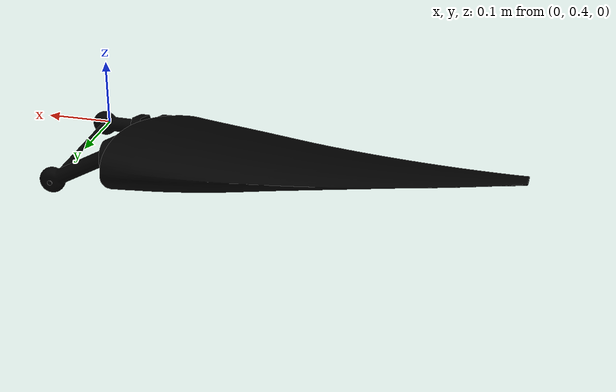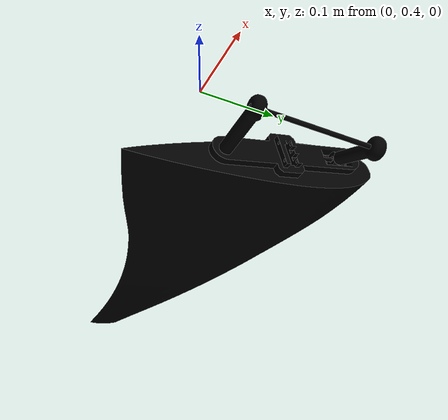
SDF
<sdf version='1.11'>
    <model name='4_link_mechanism'>
      <link name='base_link'>
        <inertial>
          <pose>-0.036030663321934601 0.59638474826819721 0.04700297266298855 0 0 0</pose>
          <mass>0.0080817471013597455</mass>
          <inertia>
            <ixx>3.0000000000000001e-05</ixx>
            <ixy>0</ixy>
            <ixz>0</ixz>
            <iyy>0</iyy>
            <iyz>0</iyz>
            <izz>3.0000000000000001e-05</izz>
          </inertia>
        </inertial>
        <collision name='base_link_collision'>
          <pose>0 0 0 0 0 0</pose>
          <geometry>
            <mesh>
              <scale>0.001 0.001 0.001</scale>
              <uri>file://$(find 4_link_mechanism_description)/meshes/base_link.stl</uri>
            </mesh>
          </geometry>
        </collision>
        <visual name='base_link_visual'>
          <pose>0 0 0 0 0 0</pose>
          <geometry>
            <mesh>
              <scale>0.001 0.001 0.001</scale>
              <uri>file://$(find 4_link_mechanism_description)/meshes/base_link.stl</uri>
            </mesh>
          </geometry>
          <material>
            <diffuse>0 0 0 1</diffuse>
            <ambient>0 0 0 1</ambient>
          </material>
        </visual>
      </link>
      <joint name='revolucion1' type='revolute'>
        <pose relative_to='base_link'>-0.036031000000000001 0.70138500000000004 0.047095999999999999 0 0 0</pose>
        <parent>base_link</parent>
        <child>input_bar_1_1</child>
        <axis>
          <xyz>-5.0000000000000004e-06 1 0.00088400000000000002</xyz>
          <limit>
            <lower>-inf</lower>
            <upper>inf</upper>
          </limit>
          <dynamics>
            <spring_reference>0</spring_reference>
            <spring_stiffness>0</spring_stiffness>
          </dynamics>
        </axis>
      </joint>
      <link name='input_bar_1_1'>
        <pose relative_to='revolucion1'>0 0 0 0 0 0</pose>
        <inertial>
          <pose>-0.027484096297025949 -0.01101397279025618 0.015329729548726819 0 0 0</pose>
          <mass>0.040656388446325881</mass>
          <inertia>
            <ixx>1.2e-05</ixx>
            <ixy>0</ixy>
            <ixz>1.5999999999999999e-05</ixz>
            <iyy>4.1e-05</iyy>
            <iyz>0</iyz>
            <izz>3.1000000000000001e-05</izz>
          </inertia>
        </inertial>
        <collision name='input_bar_1_1_collision'>
          <pose>0.036031000000000001 -0.70138500000000004 -0.047095999999999999 0 0 0</pose>
          <geometry>
            <mesh>
              <scale>0.001 0.001 0.001</scale>
              <uri>file://$(find 4_link_mechanism_description)/meshes/input_bar_1_1.stl</uri>
            </mesh>
          </geometry>
        </collision>
        <visual name='input_bar_1_1_visual'>
          <pose>0.036031000000000001 -0.70138500000000004 -0.047095999999999999 0 0 0</pose>
          <geometry>
            <mesh>
              <scale>0.001 0.001 0.001</scale>
              <uri>file://$(find 4_link_mechanism_description)/meshes/input_bar_1_1.stl</uri>
            </mesh>
          </geometry>
          <material>
            <diffuse>0 0 0 1</diffuse>
            <ambient>0 0 0 1</ambient>
          </material>
        </visual>
      </link>
      <joint name='input1_to_hook' type='prismatic'>
        <pose relative_to='input_bar_1_1'>-0.078782000000000005 -0.011039 0.043506999999999997 0 0 0</pose>
        <parent>input_bar_1_1</parent>
        <child>hook_to_slider_1</child>
        <axis>
          <xyz>0.872637 0.00043600000000000003 -0.488369</xyz>
          <limit>
            <lower>-0.017999999999999999</lower>
            <upper>0.018499999999999999</upper>
            <effort>100</effort>
            <velocity>100</velocity>
          </limit>
          <dynamics>
            <spring_reference>0</spring_reference>
            <spring_stiffness>0</spring_stiffness>
          </dynamics>
        </axis>
      </joint>
      <link name='hook_to_slider_1'>
        <pose relative_to='input1_to_hook'>0 0 0 0 0 0</pose>
        <inertial>
          <pose>-0.0056460439507312471 -2.9323806829406611e-06 0.0031599708182316472 0 0 0</pose>
          <mass>0.030364421078294609</mass>
          <inertia>
            <ixx>3.0000000000000001e-06</ixx>
            <ixy>0</ixy>
            <ixz>3.0000000000000001e-06</ixz>
            <iyy>1.0000000000000001e-05</iyy>
            <iyz>0</iyz>
            <izz>6.9999999999999999e-06</izz>
          </inertia>
        </inertial>
        <collision name='hook_to_slider_1_collision'>
          <pose>0.114813 -0.69034600000000002 -0.090603000000000003 0 0 0</pose>
          <geometry>
            <mesh>
              <scale>0.001 0.001 0.001</scale>
              <uri>file://$(find 4_link_mechanism_description)/meshes/hook_to_slider_1.stl</uri>
            </mesh>
          </geometry>
        </collision>
        <visual name='hook_to_slider_1_visual'>
          <pose>0.114813 -0.69034600000000002 -0.090603000000000003 0 0 0</pose>
          <geometry>
            <mesh>
              <scale>0.001 0.001 0.001</scale>
              <uri>file://$(find 4_link_mechanism_description)/meshes/hook_to_slider_1.stl</uri>
            </mesh>
          </geometry>
          <material>
            <diffuse>0 0 0 1</diffuse>
            <ambient>0 0 0 1</ambient>
          </material>
        </visual>
      </link>
      <joint name='spherical_joint_1' type='revolute'>
        <pose relative_to='hook_to_slider_1'>-0.014061000000000001 -6.9999999999999999e-06 0.0078689999999999993 0 0 0</pose>
        <parent>hook_to_slider_1</parent>
        <child>ball_slider_1</child>
        <axis>
          <xyz>-0.0058199999999999997 -0.96717900000000001 -0.254029</xyz>
          <limit>
            <lower>-inf</lower>
            <upper>inf</upper>
          </limit>
          <dynamics>
            <spring_reference>0</spring_reference>
            <spring_stiffness>0</spring_stiffness>
          </dynamics>
        </axis>
      </joint>
      <link name='ball_slider_1'>
        <pose relative_to='spherical_joint_1'>0 0 0 0 0 0</pose>
        <inertial>
          <pose>2.9965942252574429e-07 -1.3310900448537671e-07 2.1484172495200851e-07 0 0 0</pose>
          <mass>0.00055475290274639732</mass>
          <inertia>
            <ixx>0</ixx>
            <ixy>0</ixy>
            <ixz>0</ixz>
            <iyy>0</iyy>
            <iyz>0</iyz>
            <izz>0</izz>
          </inertia>
        </inertial>
        <collision name='ball_slider_1_collision'>
          <pose>0.12887399999999999 -0.69033900000000004 -0.098472000000000004 0 0 0</pose>
          <geometry>
            <mesh>
              <scale>0.001 0.001 0.001</scale>
              <uri>file://$(find 4_link_mechanism_description)/meshes/ball_slider_1.stl</uri>
            </mesh>
          </geometry>
        </collision>
        <visual name='ball_slider_1_visual'>
          <pose>0.12887399999999999 -0.69033900000000004 -0.098472000000000004 0 0 0</pose>
          <geometry>
            <mesh>
              <scale>0.001 0.001 0.001</scale>
              <uri>file://$(find 4_link_mechanism_description)/meshes/ball_slider_1.stl</uri>
            </mesh>
          </geometry>
          <material>
            <diffuse>0 0 0 1</diffuse>
            <ambient>0 0 0 1</ambient>
          </material>
        </visual>
      </link>
      <joint name='revolucion2' type='revolute'>
        <pose relative_to='base_link'>-0.03603 0.49138500000000002 0.04691 0 0 0</pose>
        <parent>base_link</parent>
        <child>input_bar_2_1</child>
        <axis>
          <xyz>5.0000000000000004e-06 -1 -0.00088400000000000002</xyz>
          <limit>
            <lower>-inf</lower>
            <upper>inf</upper>
          </limit>
          <dynamics>
            <spring_reference>0</spring_reference>
            <spring_stiffness>0</spring_stiffness>
          </dynamics>
        </axis>
      </joint>
      <link name='input_bar_2_1'>
        <pose relative_to='revolucion2'>0 0 0 0 0 0</pose>
        <inertial>
          <pose>-0.037788274331815953 0.0089988888589823124 0.00082006022399550016 0 0 0</pose>
          <mass>0.045897665945782408</mass>
          <inertia>
            <ixx>3.0000000000000001e-06</ixx>
            <ixy>0</ixy>
            <ixz>9.9999999999999995e-07</ixz>
            <iyy>5.5999999999999999e-05</iyy>
            <iyz>0</iyz>
            <izz>5.5999999999999999e-05</izz>
          </inertia>
        </inertial>
        <collision name='input_bar_2_1_collision'>
          <pose>0.03603 -0.49138500000000002 -0.04691 0 0 0</pose>
          <geometry>
            <mesh>
              <scale>0.001 0.001 0.001</scale>
              <uri>file://$(find 4_link_mechanism_description)/meshes/input_bar_2_1.stl</uri>
            </mesh>
          </geometry>
        </collision>
        <visual name='input_bar_2_1_visual'>
          <pose>0.03603 -0.49138500000000002 -0.04691 0 0 0</pose>
          <geometry>
            <mesh>
              <scale>0.001 0.001 0.001</scale>
              <uri>file://$(find 4_link_mechanism_description)/meshes/input_bar_2_1.stl</uri>
            </mesh>
          </geometry>
          <material>
            <diffuse>0 0 0 1</diffuse>
            <ambient>0 0 0 1</ambient>
          </material>
        </visual>
      </link>
      <joint name='input2_to_attatchment' type='prismatic'>
        <pose relative_to='input_bar_2_1'>0.59937600000000002 0.32805699999999999 -0.063697000000000004 0 0 0</pose>
        <parent>input_bar_2_1</parent>
        <child>attatchment_1</child>
        <axis>
          <xyz>-0.99973500000000004 -2.5000000000000001e-05 0.023002000000000002</xyz>
          <limit>
            <lower>-0.017999999999999999</lower>
            <upper>0.018499999999999999</upper>
            <effort>100</effort>
            <velocity>100</velocity>
          </limit>
          <dynamics>
            <spring_reference>0</spring_reference>
            <spring_stiffness>0</spring_stiffness>
          </dynamics>
        </axis>
      </joint>
      <link name='attatchment_1'>
        <pose relative_to='input2_to_attatchment'>0 0 0 0 0 0</pose>
        <inertial>
          <pose>-0.82370137434792867 -0.21731084830848821 0.089360652771222043 0 0 0</pose>
          <mass>6.462426001735782</mass>
          <inertia>
            <ixx>0.047037545185524443</ixx>
            <ixy>-0.001913982569610839</ixy>
            <ixz>0.0012135764642877691</ixz>
            <iyy>0.07160941131564158</iyy>
            <iyz>-0.01062818348767175</iyz>
            <izz>0.1103913635450926</izz>
          </inertia>
        </inertial>
        <collision name='attatchment_1_collision'>
          <pose>-0.56334600000000001 -0.819442 0.016787 0 0 0</pose>
          <geometry>
            <mesh>
              <scale>0.001 0.001 0.001</scale>
              <uri>file://$(find 4_link_mechanism_description)/meshes/attatchment_1.stl</uri>
            </mesh>
          </geometry>
        </collision>
        <collision name='attatchment_1_fixed_joint_lump__fin_1_collision_1'>
          <pose>-0.5633459999999999 -0.819442 0.016787 0 0 0</pose>
          <geometry>
            <mesh>
              <scale>0.001 0.001 0.001</scale>
              <uri>file://$(find 4_link_mechanism_description)/meshes/fin_1.stl</uri>
            </mesh>
          </geometry>
        </collision>
        <visual name='attatchment_1_visual'>
          <pose>-0.56334600000000001 -0.819442 0.016787 0 0 0</pose>
          <geometry>
            <mesh>
              <scale>0.001 0.001 0.001</scale>
              <uri>file://$(find 4_link_mechanism_description)/meshes/attatchment_1.stl</uri>
            </mesh>
          </geometry>
          <material>
            <diffuse>0 0 0 1</diffuse>
            <ambient>0 0 0 1</ambient>
          </material>
        </visual>
        <visual name='attatchment_1_fixed_joint_lump__fin_1_visual_1'>
          <pose>-0.5633459999999999 -0.819442 0.016787 0 0 0</pose>
          <geometry>
            <mesh>
              <scale>0.001 0.001 0.001</scale>
              <uri>file://$(find 4_link_mechanism_description)/meshes/fin_1.stl</uri>
            </mesh>
          </geometry>
          <material>
            <diffuse>0 0 0 1</diffuse>
            <ambient>0 0 0 1</ambient>
          </material>
        </visual>
      </link>
      <joint name='spherical_joint_1' type='revolute'>
        <pose relative_to='hook_to_slider_1'>-0.014061000000000001 -6.9999999999999999e-06 0.0078689999999999993 0 0 0</pose>
        <parent>hook_to_slider_1</parent>
        <child>ball_slider_1</child>
        <axis>
          <xyz>-0.0058199999999999997 -0.96717900000000001 -0.254029</xyz>
          <limit>
            <lower>-inf</lower>
            <upper>inf</upper>
          </limit>
          <dynamics>
            <spring_reference>0</spring_reference>
            <spring_stiffness>0</spring_stiffness>
          </dynamics>
        </axis>
      </joint>
      <link name='ball_slider_1'>
        <pose relative_to='spherical_joint_1'>0 0 0 0 0 0</pose>
        <inertial>
          <pose>2.9965942252574429e-07 -1.3310900448537671e-07 2.1484172495200851e-07 0 0 0</pose>
          <mass>0.00055475290274639732</mass>
          <inertia>
            <ixx>0</ixx>
            <ixy>0</ixy>
            <ixz>0</ixz>
            <iyy>0</iyy>
            <iyz>0</iyz>
            <izz>0</izz>
          </inertia>
        </inertial>
        <collision name='ball_slider_1_collision'>
          <pose>0.12887399999999999 -0.69033900000000004 -0.098472000000000004 0 0 0</pose>
          <geometry>
            <mesh>
              <scale>0.001 0.001 0.001</scale>
              <uri>file://$(find 4_link_mechanism_description)/meshes/ball_slider_1.stl</uri>
            </mesh>
          </geometry>
        </collision>
        <visual name='ball_slider_1_visual'>
          <pose>0.12887399999999999 -0.69033900000000004 -0.098472000000000004 0 0 0</pose>
          <geometry>
            <mesh>
              <scale>0.001 0.001 0.001</scale>
              <uri>file://$(find 4_link_mechanism_description)/meshes/ball_slider_1.stl</uri>
            </mesh>
          </geometry>
          <material>
            <diffuse>0 0 0 1</diffuse>
            <ambient>0 0 0 1</ambient>
          </material>
        </visual>
      </link>
      <frame name='fin_attatchment' attached_to='attatchment_1'>
        <pose>-0.82118899999999995 -0.46016299999999999 0.62803900000000001 0 0 0</pose>
      </frame>
      <frame name='fin_1' attached_to='fin_attatchment'>
        <pose>0 0 0 0 0 0</pose>
      </frame>
    </model>
  </sdf>
